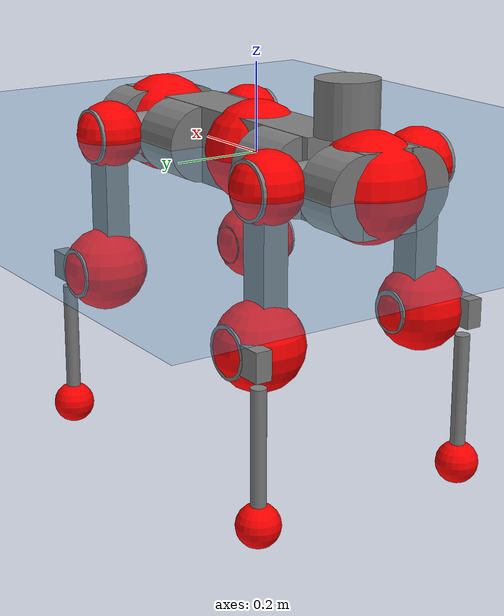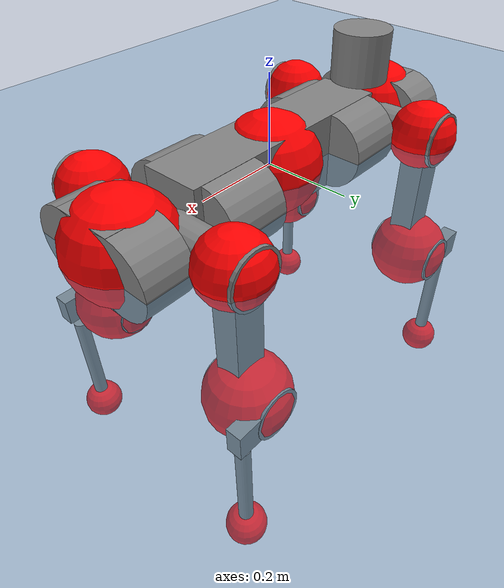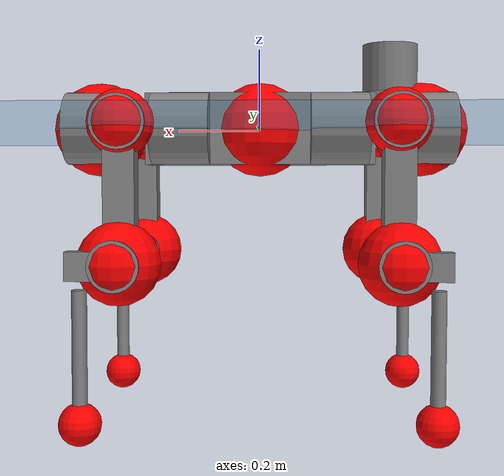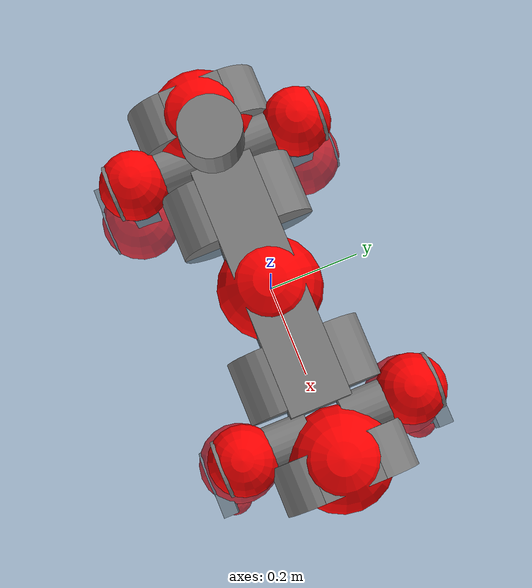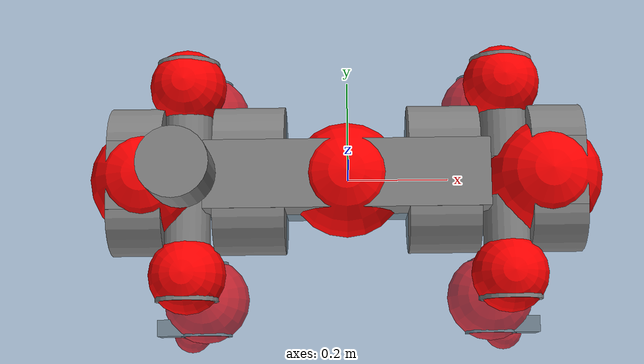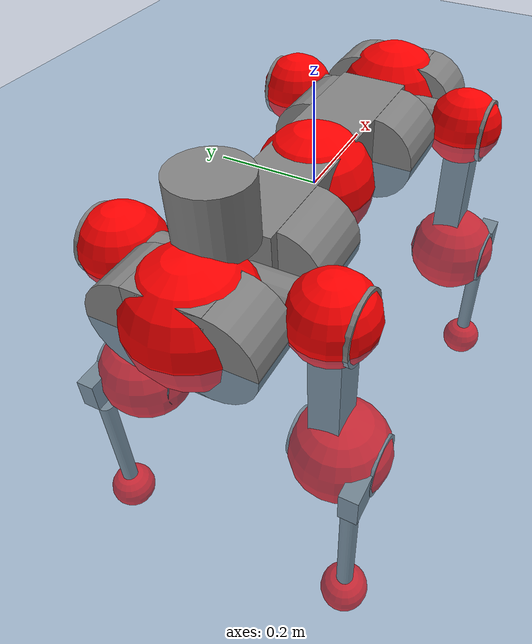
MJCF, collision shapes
<mujoco model="anymal_c">
  <compiler angle="radian" assetdir="assets" balanceinertia="true" inertiafromgeom="false"/>

  <option timestep="0.005" density="1.2" viscosity="2e-05"/>

  <size nkey="1"/>

  <visual>
    <quality shadowsize="8192"/>
    <map shadowclip="0.5"/>
  </visual>

  <default>
    <default class="/">
      <material specular="0" shininess="0.25"/>
      <geom contype="0" conaffinity="0" group="1" solref="-1000 -80"/>
      <site size="0.01 0.005 0.005" group="5"/>
      <general forcelimited="true" forcerange="-80 80" biastype="affine" gainprm="80" biasprm="0 -80 -2"/>
      <default class="anymal_c">
        <joint armature="0.01" damping="0.01" frictionloss="0.1"/>
        <default class="visual">
          <geom type="mesh" group="2"/>
          <default class="visual_zflip"/>
        </default>
        <default class="collision">
          <geom type="cylinder" group="3"/>
          <default class="foot">
            <geom size="0.03 0 0" type="sphere" condim="6" priority="1" friction="0.8 0.02 0.01" solimp="0.015 1 0.03"/>
          </default>
        </default>
      </default>
      <default class="reward_collision_sphere">
        <geom group="5" rgba="1 0 0 1"/>
      </default>
    </default>
  </default>

  <asset>
    <texture type="skybox" colorspace="auto" name="//unnamed_texture_0" builtin="gradient" rgb1="0.95 0.95 0.95" rgb2="0.95 0.95 0.95" width="100" height="600"/>
    <texture type="2d" colorspace="auto" name="texplane" builtin="checker" rgb1="0.345 0.575 0.748" rgb2="0.345 0.575 0.748" markrgb="1 1 1" width="512" height="512"/>
    <texture type="2d" colorspace="linear" name="base" file="base.png"/>
    <texture type="2d" colorspace="linear" name="top_shell" file="top_shell.png"/>
    <texture type="2d" colorspace="linear" name="bottom_shell" file="bottom_shell.png"/>
    <texture type="2d" colorspace="linear" name="remote" file="remote.png"/>
    <texture type="2d" colorspace="linear" name="hatch" file="hatch.png"/>
    <texture type="2d" colorspace="linear" name="handle" file="handle.png"/>
    <texture type="2d" colorspace="linear" name="face" file="face.png"/>
    <texture type="2d" colorspace="linear" name="battery" file="battery.png"/>
    <texture type="2d" colorspace="linear" name="lidar_cage" file="lidar_cage.png"/>
    <texture type="2d" colorspace="linear" name="depth_camera" file="depth_camera.png"/>
    <texture type="2d" colorspace="linear" name="wide_angle_camera" file="wide_angle_camera.png"/>
    <texture type="2d" colorspace="linear" name="lidar" file="lidar.png"/>
    <texture type="2d" colorspace="linear" name="drive" file="drive.png"/>
    <texture type="2d" colorspace="linear" name="hip_l" file="hip_l.png"/>
    <texture type="2d" colorspace="linear" name="shank_l" file="shank_l.png"/>
    <texture type="2d" colorspace="linear" name="foot" file="foot.png"/>
    <texture type="2d" colorspace="linear" name="thigh" file="thigh.png"/>
    <texture type="2d" colorspace="linear" name="shank_r" file="shank_r.png"/>
    <texture type="2d" colorspace="linear" name="hip_r" file="hip_r.png"/>
    <material name="MatPlane" class="/" texture="texplane" texuniform="true" texrepeat="2 2" specular="0.9" shininess="0.5"/>
    <material name="black_plastic" class="/" rgba="0.007 0.007 0.007 1"/>
    <material name="green" class="/" rgba="0.052 0.178 0.033 1"/>
    <material name="red" class="/" rgba="0.178 0.006 0.005 1"/>
    <material name="yellow" class="/" rgba="0.178 0.119 0.006 1"/>
    <material name="lwl" class="/" rgba="0.8 0.8 0.8 1"/>
    <material name="base" class="/" texture="base"/>
    <material name="top_shell" class="/" texture="top_shell"/>
    <material name="bottom_shell" class="/" texture="bottom_shell"/>
    <material name="hip_l" class="/" texture="hip_l"/>
    <material name="thigh" class="/" texture="thigh"/>
    <material name="shank_l" class="/" texture="shank_l"/>
    <material name="foot" class="/" texture="foot"/>
    <material name="hip_r" class="/" texture="hip_r"/>
    <material name="shank" class="/" texture="shank_r"/>
    <material name="hatch" class="/" texture="hatch"/>
    <material name="remote" class="/" texture="remote"/>
    <material name="handle" class="/" texture="handle"/>
    <material name="face" class="/" texture="face"/>
    <material name="depth_camera" class="/" texture="depth_camera"/>
    <material name="wide_angle_camera" class="/" texture="wide_angle_camera"/>
    <material name="battery" class="/" texture="battery"/>
    <material name="lidar_cage" class="/" texture="lidar_cage"/>
    <material name="lidar" class="/" texture="lidar"/>
    <material name="drive" class="/" texture="drive"/>
    <mesh name="base_0" class="/" file="base_0.obj"/>
    <mesh name="base_1" class="/" file="base_1.obj"/>
    <mesh name="base_2" class="/" file="base_2.obj"/>
    <mesh name="base_3" class="/" file="base_3.obj"/>
    <mesh name="base_4" class="/" file="base_4.obj"/>
    <mesh name="base_5" class="/" file="base_5.obj"/>
    <mesh name="top_shell" class="/" file="top_shell.obj"/>
    <mesh name="bottom_shell" class="/" file="bottom_shell.obj"/>
    <mesh name="remote" class="/" file="remote.obj"/>
    <mesh name="handle" class="/" file="handle.obj"/>
    <mesh name="face" class="/" file="face.obj"/>
    <mesh name="wide_angle_camera" class="/" file="wide_angle_camera.obj"/>
    <mesh name="depth_camera" class="/" file="depth_camera.obj"/>
    <mesh name="battery" class="/" file="battery.obj"/>
    <mesh name="lidar_cage" class="/" file="lidar_cage.obj"/>
    <mesh name="lidar" class="/" file="lidar.obj"/>
    <mesh name="drive" class="/" file="drive.obj"/>
    <mesh name="hip_l" class="/" file="hip_l.obj"/>
    <mesh name="thigh" class="/" file="thigh.obj"/>
    <mesh name="shank_l" class="/" file="shank_l.obj"/>
    <mesh name="foot" class="/" file="foot.obj"/>
    <mesh name="hip_r" class="/" file="hip_r.obj"/>
    <mesh name="hatch" class="/" file="hatch.obj"/>
    <mesh name="shank_r" class="/" file="shank_r.obj"/>
  </asset>

  <worldbody>
    <geom name="floor" class="/" size="100 100 0.125" type="plane" group="0" material="MatPlane"/>
    <light name="toplight_shadow" class="/" pos="0 0 5" dir="0.0990148 0.0990148 -0.990148" type="directional" ambient="0.04 0.04 0.04" diffuse="0.55 0.55 0.55" specular="0.12 0.12 0.12"/>
    <light name="toplight_fill" class="/" pos="0 0 5" dir="0.0990148 0.0990148 -0.990148" type="directional" castshadow="false" ambient="0.04 0.04 0.04" diffuse="0.3 0.3 0.3" specular="0.08 0.08 0.08"/>
    <body name="trunk" childclass="anymal_c" pos="-0.00257062 -5.41583e-05 0.00260857" quat="0.999999 0.000970656 0.000236436 0.000559469">
      <inertial pos="0.00606475 0.00125467 0.0534456" quat="0.490403 0.50008 0.50295 0.506425" mass="16.5094" diaginertia="0.334332 0.347799 0.39385"/>
      <joint name="//unnamed_joint_0" type="free" armature="0" damping="0" frictionloss="0"/>
      <geom name="//unnamed_geom_1" class="visual" material="green" mesh="base_0"/>
      <geom name="//unnamed_geom_2" class="visual" material="yellow" mesh="base_1"/>
      <geom name="//unnamed_geom_3" class="visual" material="red" mesh="base_2"/>
      <geom name="//unnamed_geom_4" class="visual" material="black_plastic" mesh="base_3"/>
      <geom name="//unnamed_geom_5" class="visual" material="lwl" mesh="base_4"/>
      <geom name="//unnamed_geom_6" class="visual" material="base" mesh="base_5"/>
      <geom name="trunk_1" class="collision" size="0.279412 0.0674443 0.0867141" type="box"/>
      <geom name="trunk_2" class="collision" size="0.0867141 0.0698531" pos="0.191407 0.0622238 0" quat="0.707107 0 0.707107 0"/>
      <geom name="trunk_3" class="collision" size="0.0867141 0.0698531" pos="-0.191407 0.0622238 0" quat="0.707107 0 0.707107 0"/>
      <geom name="trunk_4" class="collision" size="0.0867141 0.0698531" pos="0.191407 -0.0622238 0" quat="0.707107 0 0.707107 0"/>
      <geom name="trunk_5" class="collision" size="0.0867141 0.0698531" pos="-0.191407 -0.0622238 0" quat="0.707107 0 0.707107 0"/>
      <geom name="//unnamed_geom_12" class="visual" material="top_shell" mesh="top_shell"/>
      <geom name="//unnamed_geom_13" class="visual" material="bottom_shell" mesh="bottom_shell"/>
      <geom name="//unnamed_geom_14" class="visual" material="remote" mesh="remote"/>
      <geom name="//unnamed_geom_15" class="visual" material="handle" mesh="handle"/>
      <geom name="//unnamed_geom_16" class="visual" pos="0.364773 0 0" quat="1 0 0 0" material="face" mesh="face"/>
      <geom name="trunk_6" class="collision" size="0.052992 0.0674443 0.0867141" pos="0.413175 0 0" type="box"/>
      <geom name="//unnamed_geom_18" class="collision" size="0.0867141 0.052992" pos="0.413175 0.0622238 0" quat="0.707107 0 0.707107 0"/>
      <geom name="//unnamed_geom_19" class="collision" size="0.0867141 0.052992" pos="0.413175 -0.0622238 0" quat="0.707107 0 0.707107 0"/>
      <geom name="//unnamed_geom_20" class="visual" pos="0.406277 0 -0.034584" quat="0.965926 0 0.258819 0" material="depth_camera" mesh="depth_camera"/>
      <geom name="//unnamed_geom_21" class="visual" pos="0.451457 0 0.0167893" material="wide_angle_camera" mesh="wide_angle_camera"/>
      <geom name="//unnamed_geom_22" class="visual_zflip" pos="-0.364773 0 0" quat="0 0 0 1" material="face" mesh="face"/>
      <geom name="trunk_7" class="collision" size="0.052992 0.0674443 0.0867141" pos="-0.413175 0 0" quat="0 0 0 1" type="box"/>
      <geom name="//unnamed_geom_24" class="collision" size="0.0867141 0.052992" pos="-0.413175 -0.0622238 0" quat="0 -0.707107 0 0.707107"/>
      <geom name="//unnamed_geom_25" class="collision" size="0.0867141 0.052992" pos="-0.413175 0.0622238 0" quat="0 -0.707107 0 0.707107"/>
      <geom name="//unnamed_geom_26" class="visual" pos="-0.406277 0 -0.034584" quat="0 -0.258819 0 0.965926" material="depth_camera" mesh="depth_camera"/>
      <geom name="//unnamed_geom_27" class="visual_zflip" pos="-0.451457 0 0.0167893" quat="0 0 0 1" material="wide_angle_camera" mesh="wide_angle_camera"/>
      <geom name="//unnamed_geom_28" class="visual" material="battery" mesh="battery"/>
      <geom name="//unnamed_geom_29" class="visual" pos="0 0.0680927 0.030745" quat="0.683013 -0.183013 0.183013 0.683013" material="depth_camera" mesh="depth_camera"/>
      <geom name="//unnamed_geom_30" class="visual" pos="0 -0.0680927 0.030745" quat="0.683013 0.183013 0.183013 -0.683013" material="depth_camera" mesh="depth_camera"/>
      <geom name="//unnamed_geom_31" class="visual" pos="-0.320332 0 0.0824323" quat="1 0 0 0" material="lidar_cage" mesh="lidar_cage"/>
      <geom name="trunk_8" class="collision" size="0.0674443 0.0578094" pos="-0.320332 0 0.149724"/>
      <geom name="//unnamed_geom_33" class="visual" pos="-0.320332 3.48839e-06 0.159481" quat="0.707107 0 0 -0.707107" material="lidar" mesh="lidar"/>
      <geom name="//unnamed_geom_34" class="visual" pos="0.263922 0.0925295 -4.01265e-09" quat="0.258819 0.965926 0 0" material="drive" mesh="drive"/>
      <geom name="//unnamed_geom_35" class="visual" pos="0.263922 -0.0925295 4.01265e-09" quat="0.258819 -0.965926 0 0" material="drive" mesh="drive"/>
      <geom name="//unnamed_geom_36" class="visual" pos="-0.263922 0.0925295 4.01265e-09" quat="0 0 0.965926 -0.258819" material="drive" mesh="drive"/>
      <geom name="//unnamed_geom_37" class="visual" pos="-0.263922 -0.0925295 -4.01265e-09" quat="0 0 -0.965926 -0.258819" material="drive" mesh="drive"/>
      <geom name="//unnamed_geom_38" class="visual" pos="0.102084 0 0.0818715" quat="1 0 0 0" material="hatch" mesh="hatch"/>
      <geom name="//unnamed_geom_39" class="reward_collision_sphere" size="0.115619"/>
      <geom name="//unnamed_geom_40" class="reward_collision_sphere" size="0.115619" pos="0.396015 0 0"/>
      <geom name="//unnamed_geom_41" class="reward_collision_sphere" size="0.115619" pos="-0.396015 0 0"/>
      <site name="imu" pos="0.208059 0.00719105 0.062561" size="0.00963491"/>
      <camera name="track" pos="0 -1.77782 0" quat="0.707107 0.707107 0 0" mode="trackcom"/>
      <camera name="ego_camera" pos="0.396015 0 -0.0448611" quat="-0.5 -0.5 0.5 0.5"/>
      <body name="LF_HIP" pos="0.264079 0.0927191 -0.000845073" quat="0.258509 0.966009 0.000574724 0.000374019">
        <inertial pos="0.0496124 -0.0135537 -0.00981152" quat="-0.127075 0.711233 -0.135182 0.678031" mass="2.67114" diaginertia="0.00320513 0.00288 0.00613882"/>
        <joint name="LF_HAA" pos="0 0 0" axis="0.999991 -0.00269059 0.0033491" range="-0.724709 0.537571" armature="0.00952749" damping="0.0155233" frictionloss="0.0921016"/>
        <geom name="//unnamed_geom_42" class="visual" pos="0 -0.000236046 3.87703e-05" quat="0.258819 -0.965926 0 0" material="hip_l" mesh="hip_l"/>
        <geom name="//unnamed_geom_43" class="visual" pos="0.0527139 -0.0640737 -0.0387135" quat="0.183013 -0.683013 0.683013 0.183013" material="drive" mesh="drive"/>
        <geom name="//unnamed_geom_44" class="collision" size="0.0481745 0.0674443" pos="0.0527139 -0.0106312 -0.00774415" quat="-0.353553 -0.612372 0.612372 -0.353553"/>
        <body name="LF_THIGH" pos="0.0512098 -0.0669451 -0.0458878" quat="0.182212 -0.683049 0.683162 0.183118">
          <inertial pos="0.0272902 0.000293575 -0.273768" quat="0.993221 -0.00513667 -0.0807028 0.0834998" mass="2.70033" diaginertia="0.0157283 0.0171046 0.00759677"/>
          <joint name="LF_HFE" pos="0 0 0" axis="0.999956 0.00200515 -0.00911727" stiffness="0.00106215" range="-3.16689 3.15838" armature="0.00840346" damping="0.00685645" frictionloss="0.0885383"/>
          <geom name="//unnamed_geom_45" class="visual" pos="-0.000176661 -2.78376e-07 0" quat="0.707107 0 0 -0.707107" material="thigh" mesh="thigh"/>
          <geom name="//unnamed_geom_46" class="collision" size="0.0626269 0.0385396" pos="0.0352013 0 0" quat="0.5 0.5 -0.5 -0.5"/>
          <geom name="//unnamed_geom_47" class="collision" size="0.0361309 0.0289047 0.136155" pos="0.026401 0 -0.158488" quat="0.707107 0 0 -0.707107" type="box"/>
          <geom name="//unnamed_geom_48" class="visual" pos="0.0882673 0 -0.319635" quat="1 0 0 0" material="drive" mesh="drive"/>
          <geom name="//unnamed_geom_49" class="collision" size="0.0481745 0.0674443" pos="0.026665 0 -0.319635" quat="0.707107 0 0.707107 0"/>
          <geom name="//unnamed_geom_50" class="reward_collision_sphere" size="0.0770792" pos="0.0220008 0 0"/>
          <body name="LF_SHANK" pos="0.0877594 -0.00134429 -0.319781" quat="0.999999 -0.00104234 -0.000748817 0.000255346">
            <inertial pos="0.00553653 -0.051984 -0.0926282" quat="0.993409 -0.112058 -0.000292425 -0.0240942" mass="0.507939" diaginertia="0.0052749 0.00505349 0.0019911"/>
            <joint name="LF_KFE" pos="0 0 0" axis="0.999976 -0.00156381 -0.0066942" stiffness="0.00528042" range="-3.12012 3.12255" armature="0.0108183" damping="0.0134851" frictionloss="0.0920252"/>
            <geom name="//unnamed_geom_51" class="visual" pos="-5.76052e-05 -0.000307154 0" quat="0.707107 0 0 -0.707107" material="shank_l" mesh="shank_l"/>
            <geom name="LF_kfe_act" class="collision" size="0.0578094 0.0192698" pos="0.0176006 0 0" quat="0.5 0.5 -0.5 -0.5"/>
            <geom name="//unnamed_geom_53" class="collision" size="0.0553997 0.0325178 0.0183063" pos="0.0176006 -0.0511115 0" quat="0.5 0.5 -0.5 -0.5" type="box"/>
            <geom name="//unnamed_geom_54" class="visual" pos="0.0114844 -0.0782788 -0.379043" quat="0.382683 0 0 -0.92388" material="foot" mesh="foot"/>
            <geom name="LF_calf" class="collision" size="0.0168611 0.136095" pos="0.0114844 -0.0781798 -0.189521" quat="0.707107 0 0 -0.707107"/>
            <geom name="LF_foot" class="foot" size="0.029704" pos="0.0114844 -0.0781798 -0.353808" quat="0.707107 0 0 -0.707107"/>
            <geom name="//unnamed_geom_57" class="reward_collision_sphere" size="0.0963491" pos="-0.0440016 0 0"/>
            <geom name="//unnamed_geom_58" class="reward_collision_sphere" size="0.0481745" pos="0.0114844 -0.0781798 -0.353808"/>
            <site name="LF_foot" class="foot" pos="0.0114844 -0.0781798 -0.353808" quat="0.707107 0 0 -0.707107" size="0.00963491"/>
          </body>
        </body>
      </body>
      <body name="RF_HIP" pos="0.266446 -0.0925346 -0.0026649" quat="0.258973 -0.965884 -0.000284268 -0.000456905">
        <inertial pos="0.0487738 0.0177372 -0.0102954" quat="0.145829 0.677324 0.116497 0.711614" mass="2.53013" diaginertia="0.00318064 0.00272566 0.00597225"/>
        <joint name="RF_HAA" pos="0 0 0" axis="0.999997 -0.00177953 -0.00191214" range="-0.457512 0.721805" armature="0.00907899" damping="0.00929572" frictionloss="0.108679"/>
        <geom name="//unnamed_geom_59" class="visual" pos="0 0.000236044 3.87702e-05" quat="0.258819 0.965926 0 0" material="hip_r" mesh="hip_r"/>
        <geom name="//unnamed_geom_60" class="visual" pos="0.0527139 0.0640737 -0.0387135" quat="0.183013 0.683013 0.683013 -0.183013" material="drive" mesh="drive"/>
        <geom name="//unnamed_geom_61" class="collision" size="0.0481745 0.0674443" pos="0.0527139 0.0106312 -0.00774415" quat="-0.353553 0.612372 0.612372 0.353553"/>
        <body name="RF_THIGH" pos="0.0546434 0.0626159 -0.0459403" quat="0.183498 0.682964 0.682885 -0.183184">
          <inertial pos="0.0248713 -0.00273717 -0.277115" quat="0.992508 0.000440355 -0.0790242 0.093184" mass="2.66407" diaginertia="0.0153035 0.0162866 0.00701986"/>
          <joint name="RF_HFE" pos="0 0 0" axis="1 0.000115408 -0.000288675" stiffness="0.00219633" range="-3.09112 3.09831" armature="0.00918696" damping="0.00731713" frictionloss="0.107959"/>
          <geom name="//unnamed_geom_62" class="visual" pos="-0.000176661 -2.78376e-07 0" quat="0.707107 0 0 -0.707107" material="thigh" mesh="thigh"/>
          <geom name="//unnamed_geom_63" class="collision" size="0.0626269 0.0385396" pos="0.0352013 0 0" quat="0.5 0.5 0.5 0.5"/>
          <geom name="//unnamed_geom_64" class="collision" size="0.0361309 0.0289047 0.136155" pos="0.026401 0 -0.158488" quat="0.707107 0 0 0.707107" type="box"/>
          <geom name="//unnamed_geom_65" class="visual" pos="0.0882673 0 -0.319635" quat="1 0 0 0" material="drive" mesh="drive"/>
          <geom name="//unnamed_geom_66" class="collision" size="0.0481745 0.0674443" pos="0.026665 0 -0.319635" quat="0.707107 0 0.707107 0"/>
          <geom name="//unnamed_geom_67" class="reward_collision_sphere" size="0.0770792" pos="0.0220008 0 0"/>
          <body name="RF_SHANK" pos="0.086454 -0.000423821 -0.319834" quat="1 -0.000565281 8.78336e-05 -0.000569389">
            <inertial pos="0.00490808 0.054648 -0.0904224" quat="0.994338 0.1051 -0.00317126 0.015354" mass="0.534847" diaginertia="0.0055141 0.00497078 0.0019661"/>
            <joint name="RF_KFE" pos="0 0 0" axis="0.999937 -0.00418392 0.0104371" stiffness="0.0108051" range="-3.09198 3.11054" armature="0.00945106" damping="0" frictionloss="0.107305"/>
            <geom name="//unnamed_geom_68" class="visual" pos="-5.76049e-05 0.000307154 0" quat="0.707107 0 0 0.707107" material="shank" mesh="shank_r"/>
            <geom name="RF_kfe_act" class="collision" size="0.0578094 0.0192698" pos="0.0176006 0 0" quat="0.5 0.5 0.5 0.5"/>
            <geom name="//unnamed_geom_70" class="collision" size="0.0553997 0.0325178 0.0183063" pos="0.0176006 0.0511115 0" quat="0.5 0.5 0.5 0.5" type="box"/>
            <geom name="//unnamed_geom_71" class="visual" pos="0.0114844 0.0782788 -0.379043" quat="0.382683 0 0 0.92388" material="foot" mesh="foot"/>
            <geom name="RF_calf" class="collision" size="0.0168611 0.136095" pos="0.0114844 0.0781798 -0.189521" quat="0.707107 0 0 0.707107"/>
            <geom name="RF_foot" class="foot" size="0.0288987" pos="0.0114844 0.0781798 -0.353808" quat="0.707107 0 0 0.707107"/>
            <geom name="//unnamed_geom_74" class="reward_collision_sphere" size="0.0963491" pos="-0.0440016 0 0"/>
            <geom name="//unnamed_geom_75" class="reward_collision_sphere" size="0.0481745" pos="0.0114844 0.0781798 -0.353808"/>
            <site name="RF_foot" class="foot" pos="0.0114844 0.0781798 -0.353808" quat="0.707107 0 0 0.707107" size="0.00963491"/>
          </body>
        </body>
      </body>
      <body name="LH_HIP" pos="-0.265222 0.0921782 0.00111056" quat="0.000307074 5.0787e-05 0.965891 -0.258949">
        <inertial pos="0.04969 0.0142222 -0.00653222" quat="0.133762 0.678918 0.128861 0.710333" mass="2.40611" diaginertia="0.00284113 0.00256578 0.0055282"/>
        <joint name="LH_HAA" pos="0 0 0" axis="0.999998 0.000367798 -0.00179564" range="-0.476755 0.774913" armature="0.00907704" damping="0.0168998" frictionloss="0.0959461"/>
        <geom name="//unnamed_geom_76" class="visual" pos="0 0.000236044 3.87702e-05" quat="-0.258819 -0.965926 0 0" material="hip_r" mesh="hip_r"/>
        <geom name="//unnamed_geom_77" class="visual" pos="0.0527139 0.0640737 -0.0387135" quat="0.183013 0.683013 0.683013 -0.183013" material="drive" mesh="drive"/>
        <geom name="//unnamed_geom_78" class="collision" size="0.0481745 0.0674443" pos="0.0527139 0.0106312 -0.00774415" quat="-0.353553 0.612372 0.612372 0.353553"/>
        <body name="LH_THIGH" pos="0.0528138 0.063012 -0.0447381" quat="0.182654 0.683465 0.682891 -0.182134">
          <inertial pos="0.0309864 0.00253362 -0.272713" quat="0.993119 -0.00732482 -0.0804304 0.0848091" mass="2.64277" diaginertia="0.0165222 0.0165938 0.00760691"/>
          <joint name="LH_HFE" pos="0 0 0" axis="0.999996 -0.00162352 -0.00220753" range="-3.18059 3.12087" armature="0.0107259" damping="0.00481858" frictionloss="0.094896"/>
          <geom name="//unnamed_geom_79" class="visual" pos="-0.000176661 -2.78376e-07 0" quat="0.707107 0 0 -0.707107" material="thigh" mesh="thigh"/>
          <geom name="//unnamed_geom_80" class="collision" size="0.0626269 0.0385396" pos="0.0352013 0 0" quat="0.5 0.5 -0.5 -0.5"/>
          <geom name="//unnamed_geom_81" class="collision" size="0.0361309 0.0289047 0.136155" pos="0.026401 0 -0.158488" quat="0.707107 0 0 -0.707107" type="box"/>
          <geom name="//unnamed_geom_82" class="visual" pos="0.0882673 0 -0.319635" quat="1 0 0 0" material="drive" mesh="drive"/>
          <geom name="//unnamed_geom_83" class="collision" size="0.0481745 0.0674443" pos="0.026665 0 -0.319635" quat="0.707107 0 0.707107 0"/>
          <geom name="//unnamed_geom_84" class="reward_collision_sphere" size="0.0770792" pos="0.0220008 0 0"/>
          <body name="LH_SHANK" pos="0.0863722 0.00218217 -0.323229" quat="1 -9.75716e-05 -0.000247807 0.000234027">
            <inertial pos="0.00678965 0.0530321 -0.0930347" quat="0.992904 0.115162 0.00333685 0.0294653" mass="0.497326" diaginertia="0.00504433 0.00479931 0.00194902"/>
            <joint name="LH_KFE" pos="0 0 0" axis="0.999958 0.00187998 0.00899297" stiffness="0.00770672" range="-3.16276 3.12592" armature="0.00854386" damping="0" frictionloss="0.0996532"/>
            <geom name="//unnamed_geom_85" class="visual" pos="-5.76049e-05 0.000307154 0" quat="-0.707107 0 0 -0.707107" material="shank" mesh="shank_r"/>
            <geom name="LH_kfe_act" class="collision" size="0.0578094 0.0192698" pos="0.0176006 0 0" quat="0.5 0.5 -0.5 -0.5"/>
            <geom name="//unnamed_geom_87" class="collision" size="0.0553997 0.0325178 0.0183063" pos="0.0176006 0.0511115 0" quat="0.5 0.5 -0.5 -0.5" type="box"/>
            <geom name="//unnamed_geom_88" class="visual" pos="0.0114844 0.0782788 -0.379043" quat="-0.382683 0 0 -0.92388" material="foot" mesh="foot"/>
            <geom name="LH_calf" class="collision" size="0.0168611 0.136095" pos="0.0114844 0.0781798 -0.189521" quat="0.707107 0 0 -0.707107"/>
            <geom name="LH_foot" class="foot" size="0.0331043" pos="0.0114844 0.0781798 -0.353808" quat="0.707107 0 0 -0.707107"/>
            <geom name="//unnamed_geom_91" class="reward_collision_sphere" size="0.0963491" pos="-0.0440016 0 0"/>
            <geom name="//unnamed_geom_92" class="reward_collision_sphere" size="0.0481745" pos="0.0114844 0.0781798 -0.353808"/>
            <site name="LH_foot" class="foot" pos="0.0114844 0.0781798 -0.353808" quat="0.707107 0 0 -0.707107" size="0.00963491"/>
          </body>
        </body>
      </body>
      <body name="RH_HIP" pos="-0.267767 -0.0913449 0.0023316" quat="0.000295385 1.98882e-07 -0.965998 -0.25855">
        <inertial pos="0.0484294 -0.0118671 -0.00663586" quat="-0.134182 0.720009 -0.144968 0.665257" mass="2.57564" diaginertia="0.00323387 0.00281966 0.00607297"/>
        <joint name="RH_HAA" pos="0 0 0" axis="0.999953 -0.00805111 0.00539406" range="-0.688969 0.528755" armature="0.00838735" damping="0.00150637" frictionloss="0.0956849"/>
        <geom name="//unnamed_geom_93" class="visual" pos="0 -0.000236046 3.87703e-05" quat="-0.258819 0.965926 0 0" material="hip_l" mesh="hip_l"/>
        <geom name="//unnamed_geom_94" class="visual" pos="0.0527139 -0.0640737 -0.0387135" quat="-0.183013 0.683013 -0.683013 -0.183013" material="drive" mesh="drive"/>
        <geom name="//unnamed_geom_95" class="collision" size="0.0481745 0.0674443" pos="0.0527139 -0.0106312 -0.00774415" quat="0.353553 0.612372 -0.612372 0.353553"/>
        <body name="RH_THIGH" pos="0.0497502 -0.0620982 -0.0450976" quat="-0.182764 0.683061 -0.683112 -0.182711">
          <inertial pos="0.0271943 0.0014621 -0.272893" quat="0.993147 -0.0051062 -0.0807742 0.0843123" mass="2.70176" diaginertia="0.0157199 0.0162072 0.0071779"/>
          <joint name="RH_HFE" pos="0 0 0" axis="0.999931 0.00867426 -0.00792815" range="-3.11235 3.09412" armature="0.00864406" damping="0.0160429" frictionloss="0.0992139"/>
          <geom name="//unnamed_geom_96" class="visual" pos="-0.000176661 -2.78376e-07 0" quat="0.707107 0 0 -0.707107" material="thigh" mesh="thigh"/>
          <geom name="//unnamed_geom_97" class="collision" size="0.0626269 0.0385396" pos="0.0352013 0 0" quat="0.5 0.5 0.5 0.5"/>
          <geom name="//unnamed_geom_98" class="collision" size="0.0361309 0.0289047 0.136155" pos="0.026401 0 -0.158488" quat="0.707107 0 0 0.707107" type="box"/>
          <geom name="//unnamed_geom_99" class="visual" pos="0.0882673 0 -0.319635" quat="1 0 0 0" material="drive" mesh="drive"/>
          <geom name="//unnamed_geom_100" class="collision" size="0.0481745 0.0674443" pos="0.026665 0 -0.319635" quat="0.707107 0 0.707107 0"/>
          <geom name="//unnamed_geom_101" class="reward_collision_sphere" size="0.0770792" pos="0.0220008 0 0"/>
          <body name="RH_SHANK" pos="0.0896151 -0.000591332 -0.322" quat="0.999999 -0.00104601 -0.000171403 0.000158023">
            <inertial pos="0.00431966 -0.0566789 -0.0879094" quat="0.99295 -0.11578 -0.00121378 -0.0253859" mass="0.514442" diaginertia="0.00527317 0.00511931 0.00193436"/>
            <joint name="RH_KFE" pos="0 0 0" axis="0.999841 0.0117807 -0.0133883" stiffness="0.00566368" range="-3.14082 3.10344" armature="0.00974274" damping="0" frictionloss="0.107438"/>
            <geom name="//unnamed_geom_102" class="visual" pos="-5.76052e-05 -0.000307154 0" quat="0.707107 0 0 -0.707107" material="shank_l" mesh="shank_l"/>
            <geom name="RH_kfe_act" class="collision" size="0.0578094 0.0192698" pos="0.0176006 0 0" quat="0.5 0.5 0.5 0.5"/>
            <geom name="//unnamed_geom_104" class="collision" size="0.0553997 0.0325178 0.0183063" pos="0.0176006 -0.0511115 0" quat="0.5 0.5 0.5 0.5" type="box"/>
            <geom name="//unnamed_geom_105" class="visual" pos="0.0114844 -0.0782788 -0.379043" quat="0.382683 0 0 -0.92388" material="foot" mesh="foot"/>
            <geom name="RH_calf" class="collision" size="0.0168611 0.136095" pos="0.0114844 -0.0781798 -0.189521" quat="0.707107 0 0 0.707107"/>
            <geom name="RH_foot" class="foot" size="0.0273981" pos="0.0114844 -0.0781798 -0.353808" quat="0.707107 0 0 0.707107"/>
            <geom name="//unnamed_geom_108" class="reward_collision_sphere" size="0.0963491" pos="-0.0440016 0 0"/>
            <geom name="//unnamed_geom_109" class="reward_collision_sphere" size="0.0481745" pos="0.0114844 -0.0781798 -0.353808"/>
            <site name="RH_foot" class="foot" pos="0.0114844 -0.0781798 -0.353808" quat="0.707107 0 0 0.707107" size="0.00963491"/>
          </body>
        </body>
      </body>
    </body>
  </worldbody>

  <contact>
    <pair class="/" geom1="floor" geom2="LF_foot" name="//unnamed_contact_0"/>
    <pair class="/" geom1="floor" geom2="RF_foot" name="//unnamed_contact_1"/>
    <pair class="/" geom1="floor" geom2="LH_foot" name="//unnamed_contact_2"/>
    <pair class="/" geom1="floor" geom2="RH_foot" name="//unnamed_contact_3"/>
  </contact>

  <actuator>
    <general name="LF_HAA" class="/" joint="LF_HAA" forcerange="-77.5748 77.5748" gainprm="73.7111" biasprm="0 -73.7111 -1.81922"/>
    <general name="LF_HFE" class="/" joint="LF_HFE" forcerange="-84.6425 84.6425" gainprm="73.7111" biasprm="0 -73.7111 -1.81922"/>
    <general name="LF_KFE" class="/" joint="LF_KFE" forcerange="-69.874 69.874" gainprm="73.7111" biasprm="0 -73.7111 -1.81922"/>
    <general name="RF_HAA" class="/" joint="RF_HAA" forcerange="-77.273 77.273" gainprm="73.7111" biasprm="0 -73.7111 -1.81922"/>
    <general name="RF_HFE" class="/" joint="RF_HFE" forcerange="-79.1334 79.1334" gainprm="73.7111" biasprm="0 -73.7111 -1.81922"/>
    <general name="RF_KFE" class="/" joint="RF_KFE" forcerange="-71.0232 71.0232" gainprm="73.7111" biasprm="0 -73.7111 -1.81922"/>
    <general name="LH_HAA" class="/" joint="LH_HAA" forcerange="-77.6821 77.6821" gainprm="73.7111" biasprm="0 -73.7111 -1.81922"/>
    <general name="LH_HFE" class="/" joint="LH_HFE" forcerange="-76.4198 76.4198" gainprm="73.7111" biasprm="0 -73.7111 -1.81922"/>
    <general name="LH_KFE" class="/" joint="LH_KFE" forcerange="-85.5985 85.5985" gainprm="73.7111" biasprm="0 -73.7111 -1.81922"/>
    <general name="RH_HAA" class="/" joint="RH_HAA" forcerange="-74.8897 74.8897" gainprm="73.7111" biasprm="0 -73.7111 -1.81922"/>
    <general name="RH_HFE" class="/" joint="RH_HFE" forcerange="-73.9617 73.9617" gainprm="73.7111" biasprm="0 -73.7111 -1.81922"/>
    <general name="RH_KFE" class="/" joint="RH_KFE" forcerange="-84.502 84.502" gainprm="73.7111" biasprm="0 -73.7111 -1.81922"/>
  </actuator>

  <sensor>
    <gyro site="imu" name="imu_angular_velocity"/>
    <velocimeter site="imu" name="imu_linear_velocity"/>
    <framelinvel objtype="site" objname="LF_foot" name="LF_foot_global_linear_velocity"/>
    <framelinvel objtype="site" objname="RF_foot" name="RF_foot_global_linear_velocity"/>
    <framelinvel objtype="site" objname="LH_foot" name="LH_foot_global_linear_velocity"/>
    <framelinvel objtype="site" objname="RH_foot" name="RH_foot_global_linear_velocity"/>
  </sensor>

  <keyframe>
    <key name="home" qpos="0 0 0.55 1 0 0 0 0 0.4 -0.8 0 -0.4 0.8 0 -0.4 0.8 0 0.4 -0.8"/>
  </keyframe>
</mujoco>
